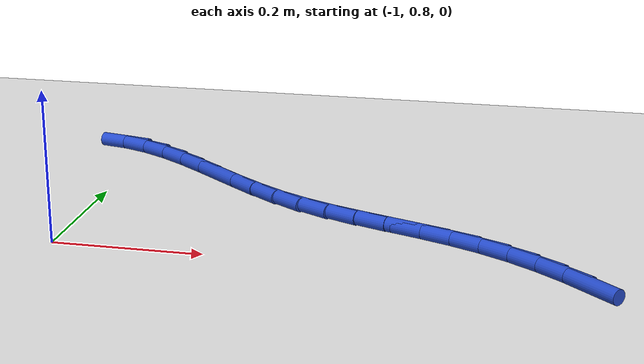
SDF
<sdf version="1.6">
 <world name="default">
  <model name="ground_plane">
   <static>1</static>
   <link name="link">
    <collision name="collision">
     <geometry><plane><normal>0 0 1</normal><size>100 100</size></plane></geometry>
     <surface><friction><ode><mu>100</mu><mu2>50</mu2></ode></friction></surface>
    </collision>
    <visual name="visual">
     <cast_shadows>0</cast_shadows>
     <geometry><plane><normal>0 0 1</normal><size>100 100</size></plane></geometry>
     <material>
      <script><uri>file://media/materials/scripts/gazebo.material</uri><name>Gazebo/WhiteGlow</name></script>
     </material>
    </visual>
   </link>
  </model>
  <model name="line">
   <link name="link_19">
    <pose>-0.3209517526399851 0.7740114215847285 0.01 0 1.57 -0.7293256935071399</pose>
    <collision name="collision">
     <geometry><cylinder><radius>0.01</radius><length>0.08</length></cylinder></geometry>
    </collision>
    <visual name="visual">
     <material>
      <script><name>Gazebo/Blue</name><uri>file://media/materials/scripts/gazebo.material</uri></script>
     </material>
     <geometry><cylinder><radius>0.01</radius><length>0.08</length></cylinder></geometry>
    </visual>
   </link>
   <link name="link_20">
    <pose>-0.35392250212142035 0.8034775095790125 0.01 0 1.57 -0.6625610832341257</pose>
    <collision name="collision">
     <geometry><cylinder><radius>0.01</radius><length>0.08</length></cylinder></geometry>
    </collision>
    <visual name="visual">
     <material>
      <script><name>Gazebo/Blue</name><uri>file://media/materials/scripts/gazebo.material</uri></script>
     </material>
     <geometry><cylinder><radius>0.01</radius><length>0.08</length></cylinder></geometry>
    </visual>
   </link>
   <link name="link_21">
    <pose>-0.38851470532124543 0.8304669282895821 0.01 0 1.57 -0.5909231779928814</pose>
    <collision name="collision">
     <geometry><cylinder><radius>0.01</radius><length>0.08</length></cylinder></geometry>
    </collision>
    <visual name="visual">
     <material>
      <script><name>Gazebo/Blue</name><uri>file://media/materials/scripts/gazebo.material</uri></script>
     </material>
     <geometry><cylinder><radius>0.01</radius><length>0.08</length></cylinder></geometry>
    </visual>
   </link>
   <link name="link_22">
    <pose>-0.4247354740247361 0.8547672071609995 0.01 0 1.57 -0.5144822797709827</pose>
    <collision name="collision">
     <geometry><cylinder><radius>0.01</radius><length>0.08</length></cylinder></geometry>
    </collision>
    <visual name="visual">
     <material>
      <script><name>Gazebo/Blue</name><uri>file://media/materials/scripts/gazebo.material</uri></script>
     </material>
     <geometry><cylinder><radius>0.01</radius><length>0.08</length></cylinder></geometry>
    </visual>
   </link>
   <link name="link_23">
    <pose>-0.4625919200171682 0.8761658756378263 0.01 0 1.57 -0.4366021855294187</pose>
    <collision name="collision">
     <geometry><cylinder><radius>0.01</radius><length>0.08</length></cylinder></geometry>
    </collision>
    <visual name="visual">
     <material>
      <script><name>Gazebo/Blue</name><uri>file://media/materials/scripts/gazebo.material</uri></script>
     </material>
     <geometry><cylinder><radius>0.01</radius><length>0.08</length></cylinder></geometry>
    </visual>
   </link>
   <link name="link_24">
    <pose>-0.502043563912625 0.8945754429551186 0.01 0 1.57 -0.37847249612537864</pose>
    <collision name="collision">
     <geometry><cylinder><radius>0.01</radius><length>0.08</length></cylinder></geometry>
    </collision>
    <visual name="visual">
     <material>
      <script><name>Gazebo/Blue</name><uri>file://media/materials/scripts/gazebo.material</uri></script>
     </material>
     <geometry><cylinder><radius>0.01</radius><length>0.08</length></cylinder></geometry>
    </visual>
   </link>
   <link name="link_25">
    <pose>-0.5427281735658166 0.910753377432773 0.01 0 1.57 -0.34858247399980025</pose>
    <collision name="collision">
     <geometry><cylinder><radius>0.01</radius><length>0.08</length></cylinder></geometry>
    </collision>
    <visual name="visual">
     <material>
      <script><name>Gazebo/Blue</name><uri>file://media/materials/scripts/gazebo.material</uri></script>
     </material>
     <geometry><cylinder><radius>0.01</radius><length>0.08</length></cylinder></geometry>
    </visual>
   </link>
   <link name="link_26">
    <pose>-0.5841502539382211 0.925807110799015 0.01 0 1.57 -0.34638778234710227</pose>
    <collision name="collision">
     <geometry><cylinder><radius>0.01</radius><length>0.08</length></cylinder></geometry>
    </collision>
    <visual name="visual">
     <material>
      <script><name>Gazebo/Blue</name><uri>file://media/materials/scripts/gazebo.material</uri></script>
     </material>
     <geometry><cylinder><radius>0.01</radius><length>0.08</length></cylinder></geometry>
    </visual>
   </link>
   <link name="link_27">
    <pose>-0.6258138833328433 0.9408451952354079 0.01 0 1.57 -0.37146566927412505</pose>
    <collision name="collision">
     <geometry><cylinder><radius>0.01</radius><length>0.08</length></cylinder></geometry>
    </collision>
    <visual name="visual">
     <material>
      <script><name>Gazebo/Blue</name><uri>file://media/materials/scripts/gazebo.material</uri></script>
     </material>
     <geometry><cylinder><radius>0.01</radius><length>0.08</length></cylinder></geometry>
    </visual>
   </link>
   <link name="link_28">
    <pose>-0.6672231400526876 0.956976182923513 0.01 0 1.57 -0.423588154599452</pose>
    <collision name="collision">
     <geometry><cylinder><radius>0.01</radius><length>0.08</length></cylinder></geometry>
    </collision>
    <visual name="visual">
     <material>
      <script><name>Gazebo/Blue</name><uri>file://media/materials/scripts/gazebo.material</uri></script>
     </material>
     <geometry><cylinder><radius>0.01</radius><length>0.08</length></cylinder></geometry>
    </visual>
   </link>
   <link name="link_29">
    <pose>-0.7078821024007586 0.9753086260448929 0.01 0 1.57 -0.5020561101154503</pose>
    <collision name="collision">
     <geometry><cylinder><radius>0.01</radius><length>0.08</length></cylinder></geometry>
    </collision>
    <visual name="visual">
     <material>
      <script><name>Gazebo/Blue</name><uri>file://media/materials/scripts/gazebo.material</uri></script>
     </material>
     <geometry><cylinder><radius>0.01</radius><length>0.08</length></cylinder></geometry>
    </visual>
   </link>
   <link name="link_30">
    <pose>-0.7472966116673565 0.9969462159104073 0.01 0 1.57 -0.5884187493287651</pose>
    <collision name="collision">
     <geometry><cylinder><radius>0.01</radius><length>0.08</length></cylinder></geometry>
    </collision>
    <visual name="visual">
     <material>
      <script><name>Gazebo/Blue</name><uri>file://media/materials/scripts/gazebo.material</uri></script>
     </material>
     <geometry><cylinder><radius>0.01</radius><length>0.08</length></cylinder></geometry>
    </visual>
   </link>
   <link name="link_31">
    <pose>-0.7852372262880111 1.0222627714040464 0.01 0 1.57 -0.6483921212265681</pose>
    <collision name="collision">
     <geometry><cylinder><radius>0.01</radius><length>0.08</length></cylinder></geometry>
    </collision>
    <visual name="visual">
     <material>
      <script><name>Gazebo/Blue</name><uri>file://media/materials/scripts/gazebo.material</uri></script>
     </material>
     <geometry><cylinder><radius>0.01</radius><length>0.08</length></cylinder></geometry>
    </visual>
   </link>
   <link name="link_32">
    <pose>-0.8220188884349133 1.0501311482640994 0.01 0 1.57 -0.6798790047006336</pose>
    <collision name="collision">
     <geometry><cylinder><radius>0.01</radius><length>0.08</length></cylinder></geometry>
    </collision>
    <visual name="visual">
     <material>
      <script><name>Gazebo/Blue</name><uri>file://media/materials/scripts/gazebo.material</uri></script>
     </material>
     <geometry><cylinder><radius>0.01</radius><length>0.08</length></cylinder></geometry>
    </visual>
   </link>
   <link name="link_33">
    <pose>-0.8580235279992464 1.079239505128904 0.01 0 1.57 -0.6840688452375403</pose>
    <collision name="collision">
     <geometry><cylinder><radius>0.01</radius><length>0.08</length></cylinder></geometry>
    </collision>
    <visual name="visual">
     <material>
      <script><name>Gazebo/Blue</name><uri>file://media/materials/scripts/gazebo.material</uri></script>
     </material>
     <geometry><cylinder><radius>0.01</radius><length>0.08</length></cylinder></geometry>
    </visual>
   </link>
   <link name="link_34">
    <pose>-0.8936330748721933 1.1082760006367984 0.01 0 1.57 -0.6604603087573799</pose>
    <collision name="collision">
     <geometry><cylinder><radius>0.01</radius><length>0.08</length></cylinder></geometry>
    </collision>
    <visual name="visual">
     <material>
      <script><name>Gazebo/Blue</name><uri>file://media/materials/scripts/gazebo.material</uri></script>
     </material>
     <geometry><cylinder><radius>0.01</radius><length>0.08</length></cylinder></geometry>
    </visual>
   </link>
   <link name="link_35">
    <pose>-0.929229458944937 1.1359287934261215 0.01 0 1.57 -0.6066395983441721</pose>
    <collision name="collision">
     <geometry><cylinder><radius>0.01</radius><length>0.08</length></cylinder></geometry>
    </collision>
    <visual name="visual">
     <material>
      <script><name>Gazebo/Blue</name><uri>file://media/materials/scripts/gazebo.material</uri></script>
     </material>
     <geometry><cylinder><radius>0.01</radius><length>0.08</length></cylinder></geometry>
    </visual>
   </link>
   <link name="link_36">
    <pose>-0.9651946101086604 1.160886042135211 0.01 0 1.57 -0.5185171730781961</pose>
    <collision name="collision">
     <geometry><cylinder><radius>0.01</radius><length>0.08</length></cylinder></geometry>
    </collision>
    <visual name="visual">
     <material>
      <script><name>Gazebo/Blue</name><uri>file://media/materials/scripts/gazebo.material</uri></script>
     </material>
     <geometry><cylinder><radius>0.01</radius><length>0.08</length></cylinder></geometry>
    </visual>
   </link>
   <link name="link_37">
    <pose>-1.0019104582545468 1.1818359054024055 0.01 0 1.57 -0.39164510755171444</pose>
    <collision name="collision">
     <geometry><cylinder><radius>0.01</radius><length>0.08</length></cylinder></geometry>
    </collision>
    <visual name="visual">
     <material>
      <script><name>Gazebo/Blue</name><uri>file://media/materials/scripts/gazebo.material</uri></script>
     </material>
     <geometry><cylinder><radius>0.01</radius><length>0.08</length></cylinder></geometry>
    </visual>
   </link>
   <link name="link_38">
    <pose>-1.039758933273779 1.197466541866043 0.01 0 1.57 -0.22868922316305312</pose>
    <collision name="collision">
     <geometry><cylinder><radius>0.01</radius><length>0.08</length></cylinder></geometry>
    </collision>
    <visual name="visual">
     <material>
      <script><name>Gazebo/Blue</name><uri>file://media/materials/scripts/gazebo.material</uri></script>
     </material>
     <geometry><cylinder><radius>0.01</radius><length>0.08</length></cylinder></geometry>
    </visual>
   </link>
  </model>
 </world>
</sdf>
